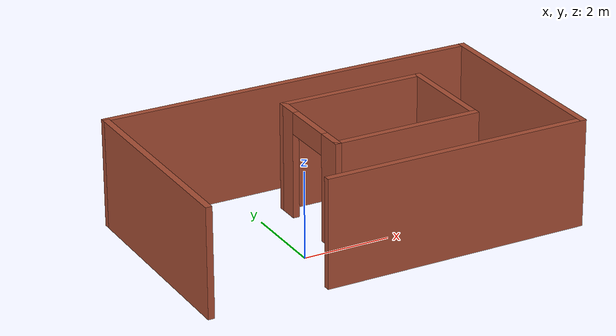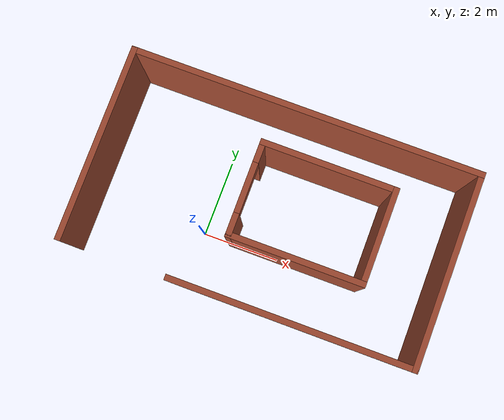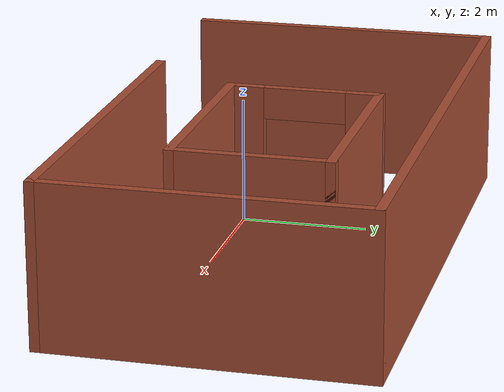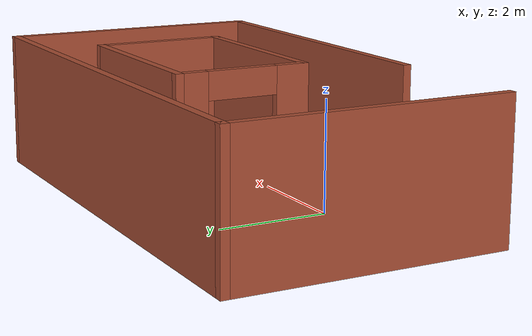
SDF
<?xml version='1.0'?>
<sdf version='1.7'>
  <model name='first_model'>
    <pose>1.48398 0.992693 0 0 -0 0</pose>
    <link name='Wall_0'>
      <collision name='Wall_0_Collision'>
        <geometry>
          <box>
            <size>5 0.15 2.5</size>
          </box>
        </geometry>
        <pose>0 0 1.25 0 -0 0</pose>
      </collision>
      <visual name='Wall_0_Visual'>
        <pose>0 0 1.25 0 -0 0</pose>
        <geometry>
          <box>
            <size>5 0.15 2.5</size>
          </box>
        </geometry>
        <material>
          <script>
            <uri>file://media/materials/scripts/gazebo.material</uri>
            <name>Gazebo/Bricks</name>
          </script>
          <ambient>1 1 1 1</ambient>
        </material>
        <meta>
          <layer>0</layer>
        </meta>
      </visual>
      <pose>-4.425 0 0 0 -0 -1.5708</pose>
    </link>
    <link name='Wall_10'>
      <collision name='Wall_10_Collision'>
        <geometry>
          <box>
            <size>3.5 0.15 2.5</size>
          </box>
        </geometry>
        <pose>0 0 1.25 0 -0 0</pose>
      </collision>
      <visual name='Wall_10_Visual'>
        <pose>0 0 1.25 0 -0 0</pose>
        <geometry>
          <box>
            <size>3.5 0.15 2.5</size>
          </box>
        </geometry>
        <material>
          <script>
            <uri>file://media/materials/scripts/gazebo.material</uri>
            <name>Gazebo/Bricks</name>
          </script>
          <ambient>1 1 1 1</ambient>
        </material>
        <meta>
          <layer>0</layer>
        </meta>
      </visual>
      <pose>0.965655 -0.984808 0 0 -0 3.14159</pose>
    </link>
    <link name='Wall_13'>
      <pose>-0.709345 0.190192 0 0 -0 -1.5708</pose>
      <visual name='Wall_13_Visual_0'>
        <pose>-0.953155 0 1.25 0 -0 0</pose>
        <geometry>
          <box>
            <size>0.593691 0.15 2.5</size>
          </box>
        </geometry>
        <material>
          <script>
            <uri>file://media/materials/scripts/gazebo.material</uri>
            <name>Gazebo/Bricks</name>
          </script>
          <ambient>1 1 1 1</ambient>
        </material>
        <meta>
          <layer>0</layer>
        </meta>
      </visual>
      <collision name='Wall_13_Collision_0'>
        <geometry>
          <box>
            <size>0.593691 0.15 2.5</size>
          </box>
        </geometry>
        <pose>-0.953155 0 1.25 0 -0 0</pose>
      </collision>
      <visual name='Wall_13_Visual_1'>
        <pose>0.940583 0 1.25 0 -0 0</pose>
        <geometry>
          <box>
            <size>0.618833 0.15 2.5</size>
          </box>
        </geometry>
        <material>
          <script>
            <uri>file://media/materials/scripts/gazebo.material</uri>
            <name>Gazebo/Bricks</name>
          </script>
          <ambient>1 1 1 1</ambient>
        </material>
        <meta>
          <layer>0</layer>
        </meta>
      </visual>
      <collision name='Wall_13_Collision_1'>
        <geometry>
          <box>
            <size>0.618833 0.15 2.5</size>
          </box>
        </geometry>
        <pose>0.940583 0 1.25 0 -0 0</pose>
      </collision>
      <visual name='Wall_13_Visual_2'>
        <pose>-0.012571 0 2.25 0 -0 0</pose>
        <geometry>
          <box>
            <size>1.28748 0.15 0.5</size>
          </box>
        </geometry>
        <material>
          <script>
            <uri>file://media/materials/scripts/gazebo.material</uri>
            <name>Gazebo/Bricks</name>
          </script>
          <ambient>1 1 1 1</ambient>
        </material>
        <meta>
          <layer>0</layer>
        </meta>
      </visual>
      <collision name='Wall_13_Collision_2'>
        <geometry>
          <box>
            <size>1.28748 0.15 0.5</size>
          </box>
        </geometry>
        <pose>-0.012571 0 2.25 0 -0 0</pose>
      </collision>
    </link>
    <link name='Wall_2'>
      <collision name='Wall_2_Collision'>
        <geometry>
          <box>
            <size>9 0.15 2.5</size>
          </box>
        </geometry>
        <pose>0 0 1.25 0 -0 0</pose>
      </collision>
      <visual name='Wall_2_Visual'>
        <pose>0 0 1.25 0 -0 0</pose>
        <geometry>
          <box>
            <size>9 0.15 2.5</size>
          </box>
        </geometry>
        <material>
          <script>
            <uri>file://media/materials/scripts/gazebo.material</uri>
            <name>Gazebo/Bricks</name>
          </script>
          <ambient>1 1 1 1</ambient>
        </material>
        <meta>
          <layer>0</layer>
        </meta>
      </visual>
      <pose>0 2.425 0 0 -0 0</pose>
    </link>
    <link name='Wall_5'>
      <collision name='Wall_5_Collision'>
        <geometry>
          <box>
            <size>5 0.15 2.5</size>
          </box>
        </geometry>
        <pose>0 0 1.25 0 -0 0</pose>
      </collision>
      <visual name='Wall_5_Visual'>
        <pose>0 0 1.25 0 -0 0</pose>
        <geometry>
          <box>
            <size>5 0.15 2.5</size>
          </box>
        </geometry>
        <material>
          <script>
            <uri>file://media/materials/scripts/gazebo.material</uri>
            <name>Gazebo/Bricks</name>
          </script>
          <ambient>1 1 1 1</ambient>
        </material>
        <meta>
          <layer>0</layer>
        </meta>
      </visual>
      <pose>4.425 0 0 0 -0 -1.5708</pose>
    </link>
    <link name='Wall_6'>
      <collision name='Wall_6_Collision'>
        <geometry>
          <box>
            <size>6.25 0.15 2.5</size>
          </box>
        </geometry>
        <pose>0 0 1.25 0 -0 0</pose>
      </collision>
      <visual name='Wall_6_Visual'>
        <pose>0 0 1.25 0 -0 0</pose>
        <geometry>
          <box>
            <size>6.25 0.15 2.5</size>
          </box>
        </geometry>
        <material>
          <script>
            <uri>file://media/materials/scripts/gazebo.material</uri>
            <name>Gazebo/Bricks</name>
          </script>
          <ambient>1 1 1 1</ambient>
        </material>
        <meta>
          <layer>0</layer>
        </meta>
      </visual>
      <pose>1.375 -2.425 0 0 -0 3.14159</pose>
    </link>
    <link name='Wall_8'>
      <collision name='Wall_8_Collision'>
        <geometry>
          <box>
            <size>3.5 0.15 2.5</size>
          </box>
        </geometry>
        <pose>0 0 1.25 0 -0 0</pose>
      </collision>
      <visual name='Wall_8_Visual'>
        <pose>0 0 1.25 0 -0 0</pose>
        <geometry>
          <box>
            <size>3.5 0.15 2.5</size>
          </box>
        </geometry>
        <material>
          <script>
            <uri>file://media/materials/scripts/gazebo.material</uri>
            <name>Gazebo/Bricks</name>
          </script>
          <ambient>1 1 1 1</ambient>
        </material>
        <meta>
          <layer>0</layer>
        </meta>
      </visual>
      <pose>0.965655 1.36519 0 0 -0 0</pose>
    </link>
    <link name='Wall_9'>
      <collision name='Wall_9_Collision'>
        <geometry>
          <box>
            <size>2.5 0.15 2.5</size>
          </box>
        </geometry>
        <pose>0 0 1.25 0 -0 0</pose>
      </collision>
      <visual name='Wall_9_Visual'>
        <pose>0 0 1.25 0 -0 0</pose>
        <geometry>
          <box>
            <size>2.5 0.15 2.5</size>
          </box>
        </geometry>
        <material>
          <script>
            <uri>file://media/materials/scripts/gazebo.material</uri>
            <name>Gazebo/Bricks</name>
          </script>
          <ambient>1 1 1 1</ambient>
        </material>
        <meta>
          <layer>0</layer>
        </meta>
      </visual>
      <pose>2.64065 0.190192 0 0 -0 -1.5708</pose>
    </link>
    <static>1</static>
  </model>
</sdf>
